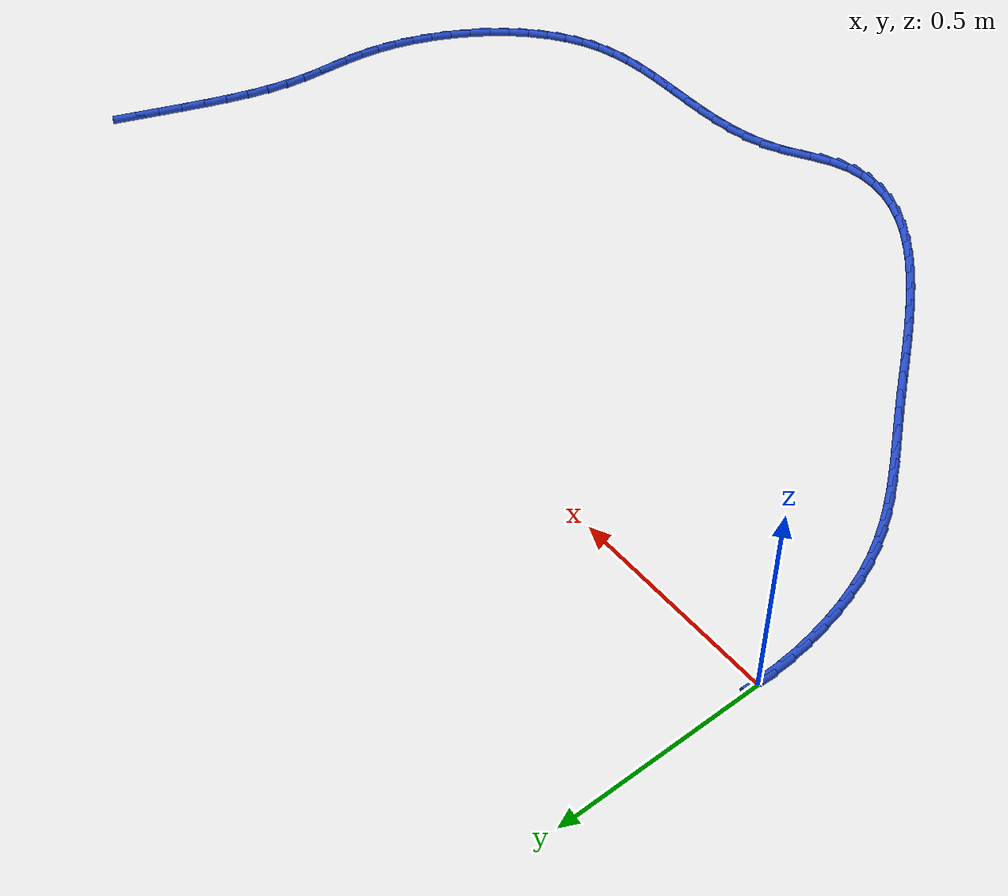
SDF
<sdf version="1.6">
 <world name="default">
  <model name="ground_plane">
   <static>1</static>
   <link name="link">
    <collision name="collision">
     <geometry><plane><normal>0 0 1</normal><size>100 100</size></plane></geometry>
     <surface><friction><ode><mu>100</mu><mu2>50</mu2></ode></friction></surface>
    </collision>
    <visual name="visual">
     <cast_shadows>0</cast_shadows>
     <geometry><plane><normal>0 0 1</normal><size>100 100</size></plane></geometry>
     <material>
      <script><uri>file://media/materials/scripts/gazebo.material</uri><name>Gazebo/WhiteGlow</name></script>
     </material>
    </visual>
   </link>
  </model>
  <model name="line">
   <link name="link_0">
    <pose>3.122502256758253e-17 2.7755575615628914e-17 0.01 0 1.57 1.5381990420906606</pose>
    <collision name="collision">
     <geometry><cylinder><radius>0.01</radius><length>0.08</length></cylinder></geometry>
    </collision>
    <visual name="visual">
     <material>
      <script><name>Gazebo/Blue</name><uri>file://media/materials/scripts/gazebo.material</uri></script>
     </material>
     <geometry><cylinder><radius>0.01</radius><length>0.08</length></cylinder></geometry>
    </visual>
   </link>
   <link name="link_76">
    <pose>2.262731717799879 0.045422341008956195 0.01 0 1.57 1.192967785224151</pose>
    <collision name="collision">
     <geometry><cylinder><radius>0.01</radius><length>0.08</length></cylinder></geometry>
    </collision>
    <visual name="visual">
     <material>
      <script><name>Gazebo/Blue</name><uri>file://media/materials/scripts/gazebo.material</uri></script>
     </material>
     <geometry><cylinder><radius>0.01</radius><length>0.08</length></cylinder></geometry>
    </visual>
   </link>
   <link name="link_77">
    <pose>2.241306172884549 -0.008560287871622496 0.01 0 1.57 1.1918666649581073</pose>
    <collision name="collision">
     <geometry><cylinder><radius>0.01</radius><length>0.08</length></cylinder></geometry>
    </collision>
    <visual name="visual">
     <material>
      <script><name>Gazebo/Blue</name><uri>file://media/materials/scripts/gazebo.material</uri></script>
     </material>
     <geometry><cylinder><radius>0.01</radius><length>0.08</length></cylinder></geometry>
    </visual>
   </link>
   <link name="link_78">
    <pose>2.2195602022056904 -0.06317478074267474 0.01 0 1.57 1.20019102868321</pose>
    <collision name="collision">
     <geometry><cylinder><radius>0.01</radius><length>0.08</length></cylinder></geometry>
    </collision>
    <visual name="visual">
     <material>
      <script><name>Gazebo/Blue</name><uri>file://media/materials/scripts/gazebo.material</uri></script>
     </material>
     <geometry><cylinder><radius>0.01</radius><length>0.08</length></cylinder></geometry>
    </visual>
   </link>
   <link name="link_79">
    <pose>2.1982241073038358 -0.11808550830693519 0.01 0 1.57 1.2181242834997617</pose>
    <collision name="collision">
     <geometry><cylinder><radius>0.01</radius><length>0.08</length></cylinder></geometry>
    </collision>
    <visual name="visual">
     <material>
      <script><name>Gazebo/Blue</name><uri>file://media/materials/scripts/gazebo.material</uri></script>
     </material>
     <geometry><cylinder><radius>0.01</radius><length>0.08</length></cylinder></geometry>
    </visual>
   </link>
   <link name="link_80">
    <pose>2.1780281897195204 -0.17295684126713484 0.01 0 1.57 1.2464056839638447</pose>
    <collision name="collision">
     <geometry><cylinder><radius>0.01</radius><length>0.08</length></cylinder></geometry>
    </collision>
    <visual name="visual">
     <material>
      <script><name>Gazebo/Blue</name><uri>file://media/materials/scripts/gazebo.material</uri></script>
     </material>
     <geometry><cylinder><radius>0.01</radius><length>0.08</length></cylinder></geometry>
    </visual>
   </link>
   <link name="link_81">
    <pose>2.1597027509932767 -0.2274531503260085 0.01 0 1.57 1.2863653479555297</pose>
    <collision name="collision">
     <geometry><cylinder><radius>0.01</radius><length>0.08</length></cylinder></geometry>
    </collision>
    <visual name="visual">
     <material>
      <script><name>Gazebo/Blue</name><uri>file://media/materials/scripts/gazebo.material</uri></script>
     </material>
     <geometry><cylinder><radius>0.01</radius><length>0.08</length></cylinder></geometry>
    </visual>
   </link>
   <link name="link_82">
    <pose>2.1439780926656398 -0.28123880618628805 0.01 0 1.57 1.339987535237432</pose>
    <collision name="collision">
     <geometry><cylinder><radius>0.01</radius><length>0.08</length></cylinder></geometry>
    </collision>
    <visual name="visual">
     <material>
      <script><name>Gazebo/Blue</name><uri>file://media/materials/scripts/gazebo.material</uri></script>
     </material>
     <geometry><cylinder><radius>0.01</radius><length>0.08</length></cylinder></geometry>
    </visual>
   </link>
   <link name="link_83">
    <pose>2.1315845162771434 -0.3339781795507053 0.01 0 1.57 1.4098290516328773</pose>
    <collision name="collision">
     <geometry><cylinder><radius>0.01</radius><length>0.08</length></cylinder></geometry>
    </collision>
    <visual name="visual">
     <material>
      <script><name>Gazebo/Blue</name><uri>file://media/materials/scripts/gazebo.material</uri></script>
     </material>
     <geometry><cylinder><radius>0.01</radius><length>0.08</length></cylinder></geometry>
    </visual>
   </link>
   <link name="link_84">
    <pose>2.123245128609718 -0.38533791795775985 0.01 0 1.57 1.482183946385227</pose>
    <collision name="collision">
     <geometry><cylinder><radius>0.01</radius><length>0.08</length></cylinder></geometry>
    </collision>
    <visual name="visual">
     <material>
      <script><name>Gazebo/Blue</name><uri>file://media/materials/scripts/gazebo.material</uri></script>
     </material>
     <geometry><cylinder><radius>0.01</radius><length>0.08</length></cylinder></geometry>
    </visual>
   </link>
   <link name="link_85">
    <pose>2.118809706570921 -0.4352610407885325 0.01 0 1.57 1.5222443048338958</pose>
    <collision name="collision">
     <geometry><cylinder><radius>0.01</radius><length>0.08</length></cylinder></geometry>
    </collision>
    <visual name="visual">
     <material>
      <script><name>Gazebo/Blue</name><uri>file://media/materials/scripts/gazebo.material</uri></script>
     </material>
     <geometry><cylinder><radius>0.01</radius><length>0.08</length></cylinder></geometry>
    </visual>
   </link>
   <link name="link_86">
    <pose>2.1164304018336697 -0.48422779376650826 0.01 0 1.57 1.522098049754579</pose>
    <collision name="collision">
     <geometry><cylinder><radius>0.01</radius><length>0.08</length></cylinder></geometry>
    </collision>
    <visual name="visual">
     <material>
      <script><name>Gazebo/Blue</name><uri>file://media/materials/scripts/gazebo.material</uri></script>
     </material>
     <geometry><cylinder><radius>0.01</radius><length>0.08</length></cylinder></geometry>
    </visual>
   </link>
   <link name="link_87">
    <pose>2.114064111839739 -0.5327802122930629 0.01 0 1.57 1.480729098906891</pose>
    <collision name="collision">
     <geometry><cylinder><radius>0.01</radius><length>0.08</length></cylinder></geometry>
    </collision>
    <visual name="visual">
     <material>
      <script><name>Gazebo/Blue</name><uri>file://media/materials/scripts/gazebo.material</uri></script>
     </material>
     <geometry><cylinder><radius>0.01</radius><length>0.08</length></cylinder></geometry>
    </visual>
   </link>
   <link name="link_88">
    <pose>2.1096677340309107 -0.5814603317695725 0.01 0 1.57 1.4047521994074639</pose>
    <collision name="collision">
     <geometry><cylinder><radius>0.01</radius><length>0.08</length></cylinder></geometry>
    </collision>
    <visual name="visual">
     <material>
      <script><name>Gazebo/Blue</name><uri>file://media/materials/scripts/gazebo.material</uri></script>
     </material>
     <geometry><cylinder><radius>0.01</radius><length>0.08</length></cylinder></geometry>
    </visual>
   </link>
   <link name="link_89">
    <pose>2.1014147101652836 -0.6307064998414816 0.01 0 1.57 1.3239006424480826</pose>
    <collision name="collision">
     <geometry><cylinder><radius>0.01</radius><length>0.08</length></cylinder></geometry>
    </collision>
    <visual name="visual">
     <material>
      <script><name>Gazebo/Blue</name><uri>file://media/materials/scripts/gazebo.material</uri></script>
     </material>
     <geometry><cylinder><radius>0.01</radius><length>0.08</length></cylinder></geometry>
    </visual>
   </link>
   <link name="link_90">
    <pose>2.0889241334458566 -0.6802648439347093 0.01 0 1.57 1.2477209170124883</pose>
    <collision name="collision">
     <geometry><cylinder><radius>0.01</radius><length>0.08</length></cylinder></geometry>
    </collision>
    <visual name="visual">
     <material>
      <script><name>Gazebo/Blue</name><uri>file://media/materials/scripts/gazebo.material</uri></script>
     </material>
     <geometry><cylinder><radius>0.01</radius><length>0.08</length></cylinder></geometry>
    </visual>
   </link>
   <link name="link_91">
    <pose>2.072407084244984 -0.7295980306936878 0.01 0 1.57 1.1743708725592843</pose>
    <collision name="collision">
     <geometry><cylinder><radius>0.01</radius><length>0.08</length></cylinder></geometry>
    </collision>
    <visual name="visual">
     <material>
      <script><name>Gazebo/Blue</name><uri>file://media/materials/scripts/gazebo.material</uri></script>
     </material>
     <geometry><cylinder><radius>0.01</radius><length>0.08</length></cylinder></geometry>
    </visual>
   </link>
   <link name="link_92">
    <pose>2.052076425852334 -0.778167873049863 0.01 0 1.57 1.1021305476242402</pose>
    <collision name="collision">
     <geometry><cylinder><radius>0.01</radius><length>0.08</length></cylinder></geometry>
    </collision>
    <visual name="visual">
     <material>
      <script><name>Gazebo/Blue</name><uri>file://media/materials/scripts/gazebo.material</uri></script>
     </material>
     <geometry><cylinder><radius>0.01</radius><length>0.08</length></cylinder></geometry>
    </visual>
   </link>
   <link name="link_93">
    <pose>2.0281450215575743 -0.8254361839346764 0.01 0 1.57 1.0293717907103082</pose>
    <collision name="collision">
     <geometry><cylinder><radius>0.01</radius><length>0.08</length></cylinder></geometry>
    </collision>
    <visual name="visual">
     <material>
      <script><name>Gazebo/Blue</name><uri>file://media/materials/scripts/gazebo.material</uri></script>
     </material>
     <geometry><cylinder><radius>0.01</radius><length>0.08</length></cylinder></geometry>
    </visual>
   </link>
   <link name="link_94">
    <pose>2.0008257346503764 -0.8708647762795747 0.01 0 1.57 0.9544983098817302</pose>
    <collision name="collision">
     <geometry><cylinder><radius>0.01</radius><length>0.08</length></cylinder></geometry>
    </collision>
    <visual name="visual">
     <material>
      <script><name>Gazebo/Blue</name><uri>file://media/materials/scripts/gazebo.material</uri></script>
     </material>
     <geometry><cylinder><radius>0.01</radius><length>0.08</length></cylinder></geometry>
    </visual>
   </link>
   <link name="link_95">
    <pose>1.970331428420409 -0.9139154630160006 0.01 0 1.57 0.8758968035671769</pose>
    <collision name="collision">
     <geometry><cylinder><radius>0.01</radius><length>0.08</length></cylinder></geometry>
    </collision>
    <visual name="visual">
     <material>
      <script><name>Gazebo/Blue</name><uri>file://media/materials/scripts/gazebo.material</uri></script>
     </material>
     <geometry><cylinder><radius>0.01</radius><length>0.08</length></cylinder></geometry>
    </visual>
   </link>
   <link name="link_96">
    <pose>1.936874966157343 -0.9540500570753977 0.01 0 1.57 0.7919090454624175</pose>
    <collision name="collision">
     <geometry><cylinder><radius>0.01</radius><length>0.08</length></cylinder></geometry>
    </collision>
    <visual name="visual">
     <material>
      <script><name>Gazebo/Blue</name><uri>file://media/materials/scripts/gazebo.material</uri></script>
     </material>
     <geometry><cylinder><radius>0.01</radius><length>0.08</length></cylinder></geometry>
    </visual>
   </link>
   <link name="link_97">
    <pose>1.900669211150846 -0.990730371389211 0.01 0 1.57 0.7008412805455088</pose>
    <collision name="collision">
     <geometry><cylinder><radius>0.01</radius><length>0.08</length></cylinder></geometry>
    </collision>
    <visual name="visual">
     <material>
      <script><name>Gazebo/Blue</name><uri>file://media/materials/scripts/gazebo.material</uri></script>
     </material>
     <geometry><cylinder><radius>0.01</radius><length>0.08</length></cylinder></geometry>
    </visual>
   </link>
   <link name="link_98">
    <pose>1.8619270266905887 -1.0234182188888838 0.01 0 1.57 0.6010376751209414</pose>
    <collision name="collision">
     <geometry><cylinder><radius>0.01</radius><length>0.08</length></cylinder></geometry>
    </collision>
    <visual name="visual">
     <material>
      <script><name>Gazebo/Blue</name><uri>file://media/materials/scripts/gazebo.material</uri></script>
     </material>
     <geometry><cylinder><radius>0.01</radius><length>0.08</length></cylinder></geometry>
    </visual>
   </link>
   <link name="link_99">
    <pose>1.8208612760662402 -1.051575412505861 0.01 0 1.57 0.4910550107025136</pose>
    <collision name="collision">
     <geometry><cylinder><radius>0.01</radius><length>0.08</length></cylinder></geometry>
    </collision>
    <visual name="visual">
     <material>
      <script><name>Gazebo/Blue</name><uri>file://media/materials/scripts/gazebo.material</uri></script>
     </material>
     <geometry><cylinder><radius>0.01</radius><length>0.08</length></cylinder></geometry>
    </visual>
   </link>
   <link name="link_100">
    <pose>1.777684822567469 -1.0746637651715858 0.01 0 1.57 0.3705531998053798</pose>
    <collision name="collision">
     <geometry><cylinder><radius>0.01</radius><length>0.08</length></cylinder></geometry>
    </collision>
    <visual name="visual">
     <material>
      <script><name>Gazebo/Blue</name><uri>file://media/materials/scripts/gazebo.material</uri></script>
     </material>
     <geometry><cylinder><radius>0.01</radius><length>0.08</length></cylinder></geometry>
    </visual>
   </link>
   <link name="link_101">
    <pose>1.7326118944667959 -1.0921745851313203 0.01 0 1.57 0.2542248696266358</pose>
    <collision name="collision">
     <geometry><cylinder><radius>0.01</radius><length>0.08</length></cylinder></geometry>
    </collision>
    <visual name="visual">
     <material>
      <script><name>Gazebo/Blue</name><uri>file://media/materials/scripts/gazebo.material</uri></script>
     </material>
     <geometry><cylinder><radius>0.01</radius><length>0.08</length></cylinder></geometry>
    </visual>
   </link>
   <link name="link_102">
    <pose>1.685889854719128 -1.1043151734035148 0.01 0 1.57 0.15907775691857928</pose>
    <collision name="collision">
     <geometry><cylinder><radius>0.01</radius><length>0.08</length></cylinder></geometry>
    </collision>
    <visual name="visual">
     <material>
      <script><name>Gazebo/Blue</name><uri>file://media/materials/scripts/gazebo.material</uri></script>
     </material>
     <geometry><cylinder><radius>0.01</radius><length>0.08</length></cylinder></geometry>
    </visual>
   </link>
   <link name="link_103">
    <pose>1.6378001975087586 -1.1120303577252149 0.01 0 1.57 0.08658479463529188</pose>
    <collision name="collision">
     <geometry><cylinder><radius>0.01</radius><length>0.08</length></cylinder></geometry>
    </collision>
    <visual name="visual">
     <material>
      <script><name>Gazebo/Blue</name><uri>file://media/materials/scripts/gazebo.material</uri></script>
     </material>
     <geometry><cylinder><radius>0.01</radius><length>0.08</length></cylinder></geometry>
    </visual>
   </link>
   <link name="link_104">
    <pose>1.588625981367087 -1.1162987691218793 0.01 0 1.57 0.036007315588917545</pose>
    <collision name="collision">
     <geometry><cylinder><radius>0.01</radius><length>0.08</length></cylinder></geometry>
    </collision>
    <visual name="visual">
     <material>
      <script><name>Gazebo/Blue</name><uri>file://media/materials/scripts/gazebo.material</uri></script>
     </material>
     <geometry><cylinder><radius>0.01</radius><length>0.08</length></cylinder></geometry>
    </visual>
   </link>
   <link name="link_105">
    <pose>1.538650264825513 -1.1180990386189673 0.01 0 1.57 0.006154270304015762</pose>
    <collision name="collision">
     <geometry><cylinder><radius>0.01</radius><length>0.08</length></cylinder></geometry>
    </collision>
    <visual name="visual">
     <material>
      <script><name>Gazebo/Blue</name><uri>file://media/materials/scripts/gazebo.material</uri></script>
     </material>
     <geometry><cylinder><radius>0.01</radius><length>0.08</length></cylinder></geometry>
    </visual>
   </link>
   <link name="link_106">
    <pose>1.4881561064154383 -1.1184097972419387 0.01 0 1.57 -0.003944845167351985</pose>
    <collision name="collision">
     <geometry><cylinder><radius>0.01</radius><length>0.08</length></cylinder></geometry>
    </collision>
    <visual name="visual">
     <material>
      <script><name>Gazebo/Blue</name><uri>file://media/materials/scripts/gazebo.material</uri></script>
     </material>
     <geometry><cylinder><radius>0.01</radius><length>0.08</length></cylinder></geometry>
    </visual>
   </link>
   <link name="link_107">
    <pose>1.437426564668261 -1.1182096760162519 0.01 0 1.57 0.005280536842371491</pose>
    <collision name="collision">
     <geometry><cylinder><radius>0.01</radius><length>0.08</length></cylinder></geometry>
    </collision>
    <visual name="visual">
     <material>
      <script><name>Gazebo/Blue</name><uri>file://media/materials/scripts/gazebo.material</uri></script>
     </material>
     <geometry><cylinder><radius>0.01</radius><length>0.08</length></cylinder></geometry>
    </visual>
   </link>
   <link name="link_108">
    <pose>1.386744698115383 -1.1184773059673665 0.01 0 1.57 0.03402804366277655</pose>
    <collision name="collision">
     <geometry><cylinder><radius>0.01</radius><length>0.08</length></cylinder></geometry>
    </collision>
    <visual name="visual">
     <material>
      <script><name>Gazebo/Blue</name><uri>file://media/materials/scripts/gazebo.material</uri></script>
     </material>
     <geometry><cylinder><radius>0.01</radius><length>0.08</length></cylinder></geometry>
    </visual>
   </link>
   <link name="link_109">
    <pose>1.3363935652882053 -1.1201913181207421 0.01 0 1.57 0.08302636087835184</pose>
    <collision name="collision">
     <geometry><cylinder><radius>0.01</radius><length>0.08</length></cylinder></geometry>
    </collision>
    <visual name="visual">
     <material>
      <script><name>Gazebo/Blue</name><uri>file://media/materials/scripts/gazebo.material</uri></script>
     </material>
     <geometry><cylinder><radius>0.01</radius><length>0.08</length></cylinder></geometry>
    </visual>
   </link>
   <link name="link_110">
    <pose>1.286656224718126 -1.1243303435018375 0.01 0 1.57 0.1532242805654047</pose>
    <collision name="collision">
     <geometry><cylinder><radius>0.01</radius><length>0.08</length></cylinder></geometry>
    </collision>
    <visual name="visual">
     <material>
      <script><name>Gazebo/Blue</name><uri>file://media/materials/scripts/gazebo.material</uri></script>
     </material>
     <geometry><cylinder><radius>0.01</radius><length>0.08</length></cylinder></geometry>
    </visual>
   </link>
   <link name="link_111">
    <pose>1.2378157349365464 -1.1318730131361119 0.01 0 1.57 0.24517217509011993</pose>
    <collision name="collision">
     <geometry><cylinder><radius>0.01</radius><length>0.08</length></cylinder></geometry>
    </collision>
    <visual name="visual">
     <material>
      <script><name>Gazebo/Blue</name><uri>file://media/materials/scripts/gazebo.material</uri></script>
     </material>
     <geometry><cylinder><radius>0.01</radius><length>0.08</length></cylinder></geometry>
    </visual>
   </link>
   <link name="link_112">
    <pose>1.190155154474868 -1.1437979580490243 0.01 0 1.57 0.358044519066353</pose>
    <collision name="collision">
     <geometry><cylinder><radius>0.01</radius><length>0.08</length></cylinder></geometry>
    </collision>
    <visual name="visual">
     <material>
      <script><name>Gazebo/Blue</name><uri>file://media/materials/scripts/gazebo.material</uri></script>
     </material>
     <geometry><cylinder><radius>0.01</radius><length>0.08</length></cylinder></geometry>
    </visual>
   </link>
   <link name="link_113">
    <pose>1.1439575418644892 -1.1610838092660347 0.01 0 1.57 0.4796557169158955</pose>
    <collision name="collision">
     <geometry><cylinder><radius>0.01</radius><length>0.08</length></cylinder></geometry>
    </collision>
    <visual name="visual">
     <material>
      <script><name>Gazebo/Blue</name><uri>file://media/materials/scripts/gazebo.material</uri></script>
     </material>
     <geometry><cylinder><radius>0.01</radius><length>0.08</length></cylinder></geometry>
    </visual>
   </link>
   <link name="link_114">
    <pose>1.099440027462613 -1.1842406328208421 0.01 0 1.57 0.5342414280984414</pose>
    <collision name="collision">
     <geometry><cylinder><radius>0.01</radius><length>0.08</length></cylinder></geometry>
    </collision>
    <visual name="visual">
     <material>
      <script><name>Gazebo/Blue</name><uri>file://media/materials/scripts/gazebo.material</uri></script>
     </material>
     <geometry><cylinder><radius>0.01</radius><length>0.08</length></cylinder></geometry>
    </visual>
   </link>
   <link name="link_115">
    <pose>1.0562582960511524 -1.2097881864373645 0.01 0 1.57 0.4860495044604346</pose>
    <collision name="collision">
     <geometry><cylinder><radius>0.01</radius><length>0.08</length></cylinder></geometry>
    </collision>
    <visual name="visual">
     <material>
      <script><name>Gazebo/Blue</name><uri>file://media/materials/scripts/gazebo.material</uri></script>
     </material>
     <geometry><cylinder><radius>0.01</radius><length>0.08</length></cylinder></geometry>
    </visual>
   </link>
   <link name="link_116">
    <pose>1.0137841100801717 -1.2322283338708155 0.01 0 1.57 0.3298990707841623</pose>
    <collision name="collision">
     <geometry><cylinder><radius>0.01</radius><length>0.08</length></cylinder></geometry>
    </collision>
    <visual name="visual">
     <material>
      <script><name>Gazebo/Blue</name><uri>file://media/materials/scripts/gazebo.material</uri></script>
     </material>
     <geometry><cylinder><radius>0.01</radius><length>0.08</length></cylinder></geometry>
    </visual>
   </link>
   <link name="link_117">
    <pose>0.9714612073601118 -1.2467202079059008 0.01 0 1.57 0.13467146576200703</pose>
    <collision name="collision">
     <geometry><cylinder><radius>0.01</radius><length>0.08</length></cylinder></geometry>
    </collision>
    <visual name="visual">
     <material>
      <script><name>Gazebo/Blue</name><uri>file://media/materials/scripts/gazebo.material</uri></script>
     </material>
     <geometry><cylinder><radius>0.01</radius><length>0.08</length></cylinder></geometry>
    </visual>
   </link>
   <link name="link_118">
    <pose>0.9291771576716209 -1.252449340090266 0.01 0 1.57 -0.05580429475518159</pose>
    <collision name="collision">
     <geometry><cylinder><radius>0.01</radius><length>0.08</length></cylinder></geometry>
    </collision>
    <visual name="visual">
     <material>
      <script><name>Gazebo/Blue</name><uri>file://media/materials/scripts/gazebo.material</uri></script>
     </material>
     <geometry><cylinder><radius>0.01</radius><length>0.08</length></cylinder></geometry>
    </visual>
   </link>
   <link name="link_119">
    <pose>0.8869838916973921 -1.250092327458204 0.01 0 1.57 -0.22815823633447668</pose>
    <collision name="collision">
     <geometry><cylinder><radius>0.01</radius><length>0.08</length></cylinder></geometry>
    </collision>
    <visual name="visual">
     <material>
      <script><name>Gazebo/Blue</name><uri>file://media/materials/scripts/gazebo.material</uri></script>
     </material>
     <geometry><cylinder><radius>0.01</radius><length>0.08</length></cylinder></geometry>
    </visual>
   </link>
   <link name="link_120">
    <pose>0.8449336071915946 -1.2403281898894662 0.01 0 1.57 -0.3753508156830387</pose>
    <collision name="collision">
     <geometry><cylinder><radius>0.01</radius><length>0.08</length></cylinder></geometry>
    </collision>
    <visual name="visual">
     <material>
      <script><name>Gazebo/Blue</name><uri>file://media/materials/scripts/gazebo.material</uri></script>
     </material>
     <geometry><cylinder><radius>0.01</radius><length>0.08</length></cylinder></geometry>
    </visual>
   </link>
   <link name="link_121">
    <pose>0.8030785019083989 -1.2238359472638038 0.01 0 1.57 -0.4964935165476492</pose>
    <collision name="collision">
     <geometry><cylinder><radius>0.01</radius><length>0.08</length></cylinder></geometry>
    </collision>
    <visual name="visual">
     <material>
      <script><name>Gazebo/Blue</name><uri>file://media/materials/scripts/gazebo.material</uri></script>
     </material>
     <geometry><cylinder><radius>0.01</radius><length>0.08</length></cylinder></geometry>
    </visual>
   </link>
   <link name="link_122">
    <pose>0.7614707736019766 -1.2012946194609684 0.01 0 1.57 -0.5942216570076018</pose>
    <collision name="collision">
     <geometry><cylinder><radius>0.01</radius><length>0.08</length></cylinder></geometry>
    </collision>
    <visual name="visual">
     <material>
      <script><name>Gazebo/Blue</name><uri>file://media/materials/scripts/gazebo.material</uri></script>
     </material>
     <geometry><cylinder><radius>0.01</radius><length>0.08</length></cylinder></geometry>
    </visual>
   </link>
   <link name="link_123">
    <pose>0.7201626200264968 -1.1733832263607116 0.01 0 1.57 -0.6723144791762253</pose>
    <collision name="collision">
     <geometry><cylinder><radius>0.01</radius><length>0.08</length></cylinder></geometry>
    </collision>
    <visual name="visual">
     <material>
      <script><name>Gazebo/Blue</name><uri>file://media/materials/scripts/gazebo.material</uri></script>
     </material>
     <geometry><cylinder><radius>0.01</radius><length>0.08</length></cylinder></geometry>
    </visual>
   </link>
   <link name="link_124">
    <pose>0.6792062389361302 -1.1407807878427845 0.01 0 1.57 -0.7344108232550602</pose>
    <collision name="collision">
     <geometry><cylinder><radius>0.01</radius><length>0.08</length></cylinder></geometry>
    </collision>
    <visual name="visual">
     <material>
      <script><name>Gazebo/Blue</name><uri>file://media/materials/scripts/gazebo.material</uri></script>
     </material>
     <geometry><cylinder><radius>0.01</radius><length>0.08</length></cylinder></geometry>
    </visual>
   </link>
   <link name="link_125">
    <pose>0.6386538280850479 -1.104166323786939 0.01 0 1.57 -0.7835395168214674</pose>
    <collision name="collision">
     <geometry><cylinder><radius>0.01</radius><length>0.08</length></cylinder></geometry>
    </collision>
    <visual name="visual">
     <material>
      <script><name>Gazebo/Blue</name><uri>file://media/materials/scripts/gazebo.material</uri></script>
     </material>
     <geometry><cylinder><radius>0.01</radius><length>0.08</length></cylinder></geometry>
    </visual>
   </link>
   <link name="link_126">
    <pose>0.5985575852274196 -1.0642188540729265 0.01 0 1.57 -0.8220480408588032</pose>
    <collision name="collision">
     <geometry><cylinder><radius>0.01</radius><length>0.08</length></cylinder></geometry>
    </collision>
    <visual name="visual">
     <material>
      <script><name>Gazebo/Blue</name><uri>file://media/materials/scripts/gazebo.material</uri></script>
     </material>
     <geometry><cylinder><radius>0.01</radius><length>0.08</length></cylinder></geometry>
    </visual>
   </link>
   <link name="link_127">
    <pose>0.5589697081174163 -1.0216173985804986 0.01 0 1.57 -0.8516748721481268</pose>
    <collision name="collision">
     <geometry><cylinder><radius>0.01</radius><length>0.08</length></cylinder></geometry>
    </collision>
    <visual name="visual">
     <material>
      <script><name>Gazebo/Blue</name><uri>file://media/materials/scripts/gazebo.material</uri></script>
     </material>
     <geometry><cylinder><radius>0.01</radius><length>0.08</length></cylinder></geometry>
    </visual>
   </link>
   <link name="link_128">
    <pose>0.5199423945092074 -0.9770409771894056 0.01 0 1.57 -0.8736496232288888</pose>
    <collision name="collision">
     <geometry><cylinder><radius>0.01</radius><length>0.08</length></cylinder></geometry>
    </collision>
    <visual name="visual">
     <material>
      <script><name>Gazebo/Blue</name><uri>file://media/materials/scripts/gazebo.material</uri></script>
     </material>
     <geometry><cylinder><radius>0.01</radius><length>0.08</length></cylinder></geometry>
    </visual>
   </link>
   <link name="link_129">
    <pose>0.48152784215696404 -0.9311686097794002 0.01 0 1.57 -0.8887773019427171</pose>
    <collision name="collision">
     <geometry><cylinder><radius>0.01</radius><length>0.08</length></cylinder></geometry>
    </collision>
    <visual name="visual">
     <material>
      <script><name>Gazebo/Blue</name><uri>file://media/materials/scripts/gazebo.material</uri></script>
     </material>
     <geometry><cylinder><radius>0.01</radius><length>0.08</length></cylinder></geometry>
    </visual>
   </link>
   <link name="link_130">
    <pose>0.4437782488148571 -0.8846793162302341 0.01 0 1.57 -0.8974928423899609</pose>
    <collision name="collision">
     <geometry><cylinder><radius>0.01</radius><length>0.08</length></cylinder></geometry>
    </collision>
    <visual name="visual">
     <material>
      <script><name>Gazebo/Blue</name><uri>file://media/materials/scripts/gazebo.material</uri></script>
     </material>
     <geometry><cylinder><radius>0.01</radius><length>0.08</length></cylinder></geometry>
    </visual>
   </link>
   <link name="link_131">
    <pose>0.4067458122370559 -0.8382521164216576 0.01 0 1.57 -0.8998813375744895</pose>
    <collision name="collision">
     <geometry><cylinder><radius>0.01</radius><length>0.08</length></cylinder></geometry>
    </collision>
    <visual name="visual">
     <material>
      <script><name>Gazebo/Blue</name><uri>file://media/materials/scripts/gazebo.material</uri></script>
     </material>
     <geometry><cylinder><radius>0.01</radius><length>0.08</length></cylinder></geometry>
    </visual>
   </link>
   <link name="link_132">
    <pose>0.3704827301777321 -0.7925660302334238 0.01 0 1.57 -0.8956592407972229</pose>
    <collision name="collision">
     <geometry><cylinder><radius>0.01</radius><length>0.08</length></cylinder></geometry>
    </collision>
    <visual name="visual">
     <material>
      <script><name>Gazebo/Blue</name><uri>file://media/materials/scripts/gazebo.material</uri></script>
     </material>
     <geometry><cylinder><radius>0.01</radius><length>0.08</length></cylinder></geometry>
    </visual>
   </link>
   <link name="link_133">
    <pose>0.3350412003910548 -0.7483000775452822 0.01 0 1.57 -0.8858889709633269</pose>
    <collision name="collision">
     <geometry><cylinder><radius>0.01</radius><length>0.08</length></cylinder></geometry>
    </collision>
    <visual name="visual">
     <material>
      <script><name>Gazebo/Blue</name><uri>file://media/materials/scripts/gazebo.material</uri></script>
     </material>
     <geometry><cylinder><radius>0.01</radius><length>0.08</length></cylinder></geometry>
    </visual>
   </link>
   <link name="link_134">
    <pose>0.3004889277154117 -0.7059986078162992 0.01 0 1.57 -0.8804124587141177</pose>
    <collision name="collision">
     <geometry><cylinder><radius>0.01</radius><length>0.08</length></cylinder></geometry>
    </collision>
    <visual name="visual">
     <material>
      <script><name>Gazebo/Blue</name><uri>file://media/materials/scripts/gazebo.material</uri></script>
     </material>
     <geometry><cylinder><radius>0.01</radius><length>0.08</length></cylinder></geometry>
    </visual>
   </link>
   <link name="link_135">
    <pose>0.2669826057260676 -0.6654331527105176 0.01 0 1.57 -0.8836918130532102</pose>
    <collision name="collision">
     <geometry><cylinder><radius>0.01</radius><length>0.08</length></cylinder></geometry>
    </collision>
    <visual name="visual">
     <material>
      <script><name>Gazebo/Blue</name><uri>file://media/materials/scripts/gazebo.material</uri></script>
     </material>
     <geometry><cylinder><radius>0.01</radius><length>0.08</length></cylinder></geometry>
    </visual>
   </link>
   <link name="link_136">
    <pose>0.23471061254481124 -0.6261000811889044 0.01 0 1.57 -0.8966001584998707</pose>
    <collision name="collision">
     <geometry><cylinder><radius>0.01</radius><length>0.08</length></cylinder></geometry>
    </collision>
    <visual name="visual">
     <material>
      <script><name>Gazebo/Blue</name><uri>file://media/materials/scripts/gazebo.material</uri></script>
     </material>
     <geometry><cylinder><radius>0.01</radius><length>0.08</length></cylinder></geometry>
    </visual>
   </link>
   <link name="link_137">
    <pose>0.2038613648682217 -0.5874954272117973 0.01 0 1.57 -0.9197851140580959</pose>
    <collision name="collision">
     <geometry><cylinder><radius>0.01</radius><length>0.08</length></cylinder></geometry>
    </collision>
    <visual name="visual">
     <material>
      <script><name>Gazebo/Blue</name><uri>file://media/materials/scripts/gazebo.material</uri></script>
     </material>
     <geometry><cylinder><radius>0.01</radius><length>0.08</length></cylinder></geometry>
    </visual>
   </link>
   <link name="link_138">
    <pose>0.17462327939287778 -0.5491152247395343 0.01 0 1.57 -0.9535605815452589</pose>
    <collision name="collision">
     <geometry><cylinder><radius>0.01</radius><length>0.08</length></cylinder></geometry>
    </collision>
    <visual name="visual">
     <material>
      <script><name>Gazebo/Blue</name><uri>file://media/materials/scripts/gazebo.material</uri></script>
     </material>
     <geometry><cylinder><radius>0.01</radius><length>0.08</length></cylinder></geometry>
    </visual>
   </link>
   <link name="link_139">
    <pose>0.14718477281535686 -0.5104555077324515 0.01 0 1.57 -0.9977713481135946</pose>
    <collision name="collision">
     <geometry><cylinder><radius>0.01</radius><length>0.08</length></cylinder></geometry>
    </collision>
    <visual name="visual">
     <material>
      <script><name>Gazebo/Blue</name><uri>file://media/materials/scripts/gazebo.material</uri></script>
     </material>
     <geometry><cylinder><radius>0.01</radius><length>0.08</length></cylinder></geometry>
    </visual>
   </link>
   <link name="link_140">
    <pose>0.12173426183223833 -0.4710123101508873 0.01 0 1.57 -1.0516604870746398</pose>
    <collision name="collision">
     <geometry><cylinder><radius>0.01</radius><length>0.08</length></cylinder></geometry>
    </collision>
    <visual name="visual">
     <material>
      <script><name>Gazebo/Blue</name><uri>file://media/materials/scripts/gazebo.material</uri></script>
     </material>
     <geometry><cylinder><radius>0.01</radius><length>0.08</length></cylinder></geometry>
    </visual>
   </link>
   <link name="link_141">
    <pose>0.09846016314009975 -0.4302816659551776 0.01 0 1.57 -1.1136376845189633</pose>
    <collision name="collision">
     <geometry><cylinder><radius>0.01</radius><length>0.08</length></cylinder></geometry>
    </collision>
    <visual name="visual">
     <material>
      <script><name>Gazebo/Blue</name><uri>file://media/materials/scripts/gazebo.material</uri></script>
     </material>
     <geometry><cylinder><radius>0.01</radius><length>0.08</length></cylinder></geometry>
    </visual>
   </link>
   <link name="link_142">
    <pose>0.07754833459355764 -0.387770597233515 0.01 0 1.57 -1.1774489280026847</pose>
    <collision name="collision">
     <geometry><cylinder><radius>0.01</radius><length>0.08</length></cylinder></geometry>
    </collision>
    <visual name="visual">
     <material>
      <script><name>Gazebo/Blue</name><uri>file://media/materials/scripts/gazebo.material</uri></script>
     </material>
     <geometry><cylinder><radius>0.01</radius><length>0.08</length></cylinder></geometry>
    </visual>
   </link>
   <link name="link_143">
    <pose>0.059105316152696666 -0.3433267313866304 0.01 0 1.57 -1.2377081715111673</pose>
    <collision name="collision">
     <geometry><cylinder><radius>0.01</radius><length>0.08</length></cylinder></geometry>
    </collision>
    <visual name="visual">
     <material>
      <script><name>Gazebo/Blue</name><uri>file://media/materials/scripts/gazebo.material</uri></script>
     </material>
     <geometry><cylinder><radius>0.01</radius><length>0.08</length></cylinder></geometry>
    </visual>
   </link>
   <link name="link_144">
    <pose>0.04314495711284013 -0.29719572620960916 0.01 0 1.57 -1.2947650112117015</pose>
    <collision name="collision">
     <geometry><cylinder><radius>0.01</radius><length>0.08</length></cylinder></geometry>
    </collision>
    <visual name="visual">
     <material>
      <script><name>Gazebo/Blue</name><uri>file://media/materials/scripts/gazebo.material</uri></script>
     </material>
     <geometry><cylinder><radius>0.01</radius><length>0.08</length></cylinder></geometry>
    </visual>
   </link>
   <link name="link_145">
    <pose>0.029675853004438545 -0.24964580010933463 0.01 0 1.57 -1.3492549448311562</pose>
    <collision name="collision">
     <geometry><cylinder><radius>0.01</radius><length>0.08</length></cylinder></geometry>
    </collision>
    <visual name="visual">
     <material>
      <script><name>Gazebo/Blue</name><uri>file://media/materials/scripts/gazebo.material</uri></script>
     </material>
     <geometry><cylinder><radius>0.01</radius><length>0.08</length></cylinder></geometry>
    </visual>
   </link>
   <link name="link_146">
    <pose>0.01870659935794145 -0.20094517149268662 0.01 0 1.57 -1.4017852839882752</pose>
    <collision name="collision">
     <geometry><cylinder><radius>0.01</radius><length>0.08</length></cylinder></geometry>
    </collision>
    <visual name="visual">
     <material>
      <script><name>Gazebo/Blue</name><uri>file://media/materials/scripts/gazebo.material</uri></script>
     </material>
     <geometry><cylinder><radius>0.01</radius><length>0.08</length></cylinder></geometry>
    </visual>
   </link>
   <link name="link_147">
    <pose>0.010245791703799058 -0.1513620587665473 0.01 0 1.57 -1.4529371950197802</pose>
    <collision name="collision">
     <geometry><cylinder><radius>0.01</radius><length>0.08</length></cylinder></geometry>
    </collision>
    <visual name="visual">
     <material>
      <script><name>Gazebo/Blue</name><uri>file://media/materials/scripts/gazebo.material</uri></script>
     </material>
     <geometry><cylinder><radius>0.01</radius><length>0.08</length></cylinder></geometry>
    </visual>
   </link>
   <link name="link_148">
    <pose>0.004302025572461449 -0.10116468033779928 0.01 0 1.57 -1.5032715724383565</pose>
    <collision name="collision">
     <geometry><cylinder><radius>0.01</radius><length>0.08</length></cylinder></geometry>
    </collision>
    <visual name="visual">
     <material>
      <script><name>Gazebo/Blue</name><uri>file://media/materials/scripts/gazebo.material</uri></script>
     </material>
     <geometry><cylinder><radius>0.01</radius><length>0.08</length></cylinder></geometry>
    </visual>
   </link>
   <link name="link_149">
    <pose>0.0008838964943784023 -0.050621254613322404 0.01 0 1.57 -1.5533371253501032</pose>
    <collision name="collision">
     <geometry><cylinder><radius>0.01</radius><length>0.08</length></cylinder></geometry>
    </collision>
    <visual name="visual">
     <material>
      <script><name>Gazebo/Blue</name><uri>file://media/materials/scripts/gazebo.material</uri></script>
     </material>
     <geometry><cylinder><radius>0.01</radius><length>0.08</length></cylinder></geometry>
    </visual>
   </link>
   <link name="link_150">
    <pose>1.3877787807814457e-17 1.942890293094024e-16 0.01 0 1.57 1.5379130194651507</pose>
    <collision name="collision">
     <geometry><cylinder><radius>0.01</radius><length>0.08</length></cylinder></geometry>
    </collision>
    <visual name="visual">
     <material>
      <script><name>Gazebo/Blue</name><uri>file://media/materials/scripts/gazebo.material</uri></script>
     </material>
     <geometry><cylinder><radius>0.01</radius><length>0.08</length></cylinder></geometry>
    </visual>
   </link>
  </model>
 </world>
</sdf>
